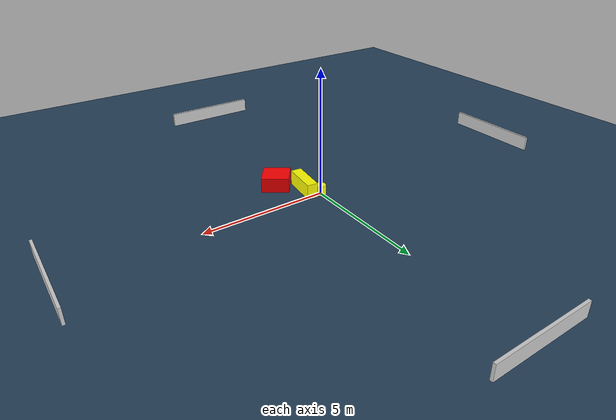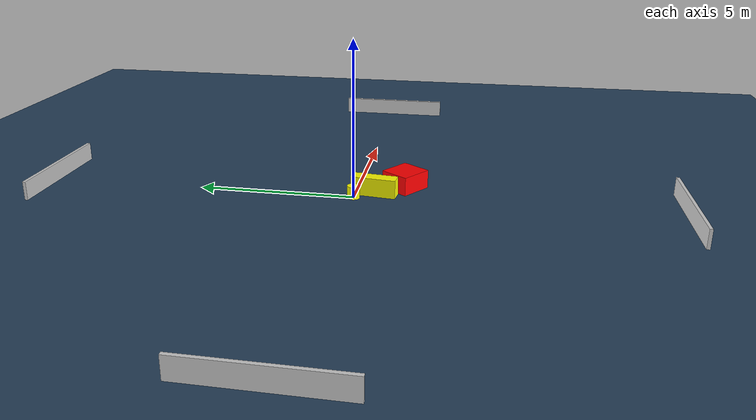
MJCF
<?xml version="1.0" ?>
<mujoco model="generated_environment">
  <option timestep="0.01" integrator="RK4" cone="elliptic"/>
  <default>
    <geom density="1"/>
  </default>
  <asset>
    <texture builtin="gradient" height="3072" name="skybox" rgb1="0.3 0.5 0.7" rgb2="0 0 0" type="skybox" width="512"/>
    <texture builtin="checker" height="300" name="groundplane" rgb1="0.2 0.3 0.4" rgb2="0.1 0.2 0.3" type="2d" width="300"/>
    <material name="groundplane" reflectance="0.2" texrepeat="5 5" texture="groundplane"/>
  </asset>
  <worldbody>
    <light dir="0 0 -1" directional="true" pos="0 0 1.5"/>
    <geom condim="3" friction="0.5 0.005 0.001" material="groundplane" name="floor" pos="0 0 0" size="0 0 0.05" type="plane"/>
    <body name="walls">
      <geom name="wall_1" condim="4" pos="-10.0 0.0 0.3" rgba="0.800000011920929 0.800000011920929 0.800000011920929 1.0" size="0.05 2.0 0.3" type="box"/>
      <geom name="wall_2" condim="4" pos="10.0 0.0 0.3" rgba="0.800000011920929 0.800000011920929 0.800000011920929 1.0" size="0.05 2.0 0.3" type="box"/>
      <geom name="wall_3" condim="4" pos="0.0 -10.0 0.3" rgba="0.800000011920929 0.800000011920929 0.800000011920929 1.0" size="2.0 0.05 0.3" type="box"/>
      <geom name="wall_4" condim="4" pos="0.0 10.0 0.3" rgba="0.800000011920929 0.800000011920929 0.800000011920929 1.0" size="2.0 0.05 0.3" type="box"/>
    </body>
    <body name="robot">
      <joint name="joint_x" type="slide" pos="0 0 0" axis="1 0 0"/>
      <joint name="joint_y" type="slide" pos="0 0 0" axis="0 1 0"/>
      <geom name="robot" type="cylinder" pos="0.0 0.0 0.2" size="0.2 0.2 0.0" mass="5.0" friction="1.0 0.005 0.0001" condim="4" rgba="1.0 1.0 0.0 1.0"/>
    </body>
    <body name="obstacle_1_movable">
      <geom name="obstacle_1_movable" condim="4" pos="0.3816357334969792 -0.6016173275951832 0.3" euler="0 0 173.34670953519472" friction="0.0 0.005 0.001" rgba="1.0 1.0 0.0 1.0" size="0.21928610398605983 0.7219398715686287 0.3" type="box" mass="0.1"/>
      <joint type="free"/>
    </body>
    <body name="obstacle_2_static">
      <geom name="obstacle_2_static" condim="4" pos="1.128130019510096 -1.496782477628476 0.3" euler="0 0 234.05684815631955" friction="0.0 0.005 0.001" rgba="1.0 0.0 0.0 1.0" size="0.49856057532540254 0.5417943485434222 0.3" type="box"/>
    </body>
  </worldbody>
  <actuator>
    <motor name="actuator_x" joint="joint_x" gear="1" ctrlrange="-1 1"/>
    <motor name="actuator_y" joint="joint_y" gear="1" ctrlrange="-1 1"/>
  </actuator>
</mujoco>
